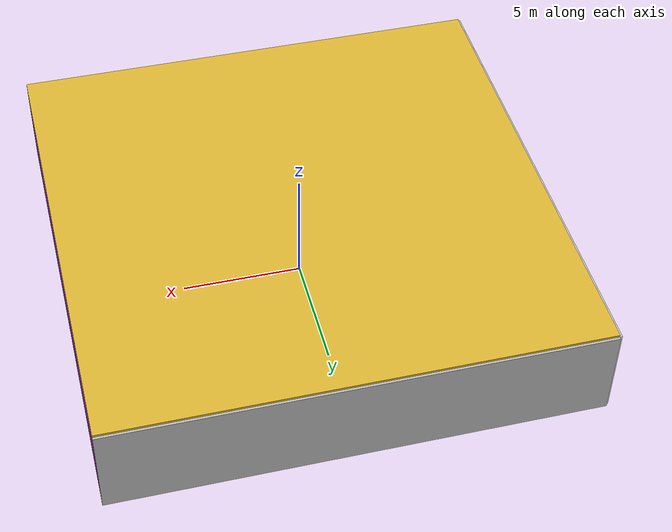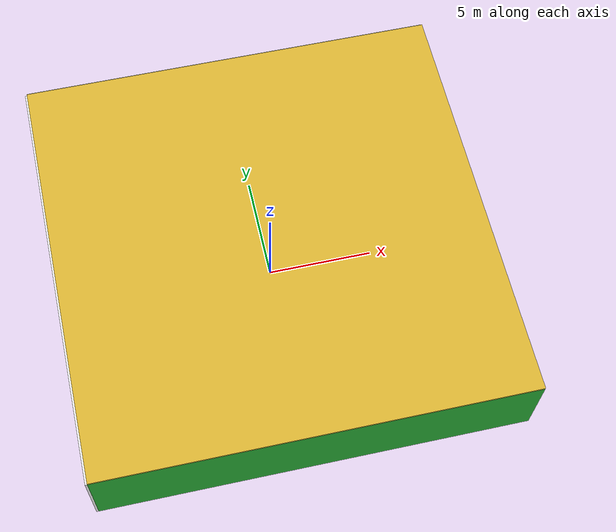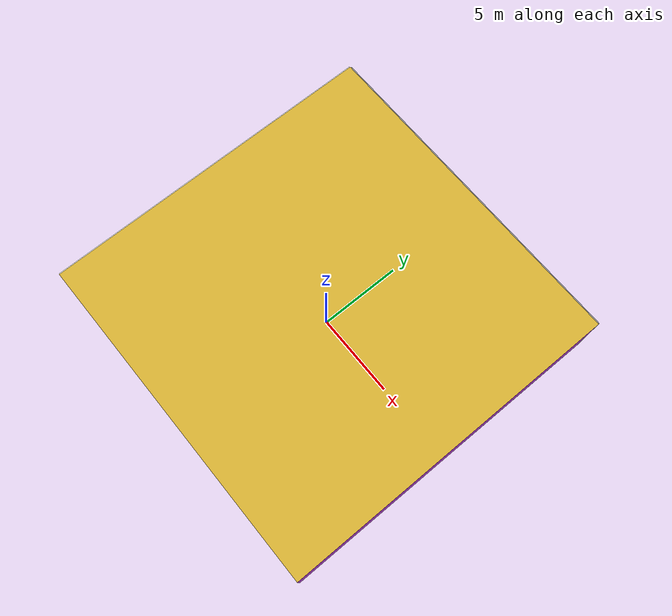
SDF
<sdf version="1.4">
 <world name="default">
  <physics type="ode">
   <max_step_size>0.001</max_step_size>
   <real_time_factor>1</real_time_factor>
   <real_time_update_rate>1000</real_time_update_rate>
   <gravity>0 0 -9.8</gravity>
  </physics>
  <scene><ambient>0.4 0.4 0.4 1</ambient><background>0.7 0.7 0.7 1</background><shadows>1</shadows></scene>
  <model name="Surrounding">
   <static>1</static>
   <link name="Ceiling">
    <collision name="Ceiling_Collision"><geometry><box><size>20 20 0.1</size></box></geometry></collision>
    <visual name="Ceiling_Visual">
     <geometry><box><size>20 20 0.1</size></box></geometry>
     <material>
      <script><uri>file://media/materials/scripts/gazebo.material</uri><name>Gazebo/Gold</name></script>
     </material>
    </visual>
    <pose>0 0 4.05 0 0 0</pose>
   </link>
   <link name="Wall_South">
    <collision name="Wall_South_Collision">
     <geometry><box><size>20 0 4</size></box></geometry>
     <pose>0 0 2 0 -0 0</pose>
    </collision>
    <visual name="Wall_South_Visual">
     <pose>0 0 2 0 -0 0</pose>
     <geometry><box><size>20 0 4</size></box></geometry>
     <material>
      <script><uri>file://media/materials/scripts/gazebo.material</uri><name>Gazebo/Green</name></script>
     </material>
    </visual>
    <velocity_decay><linear>0</linear><angular>0</angular></velocity_decay>
    <pose>0 -10 0 0 -0 0</pose>
   </link>
   <link name="Wall_East">
    <collision name="Wall_21_Collision">
     <geometry><box><size>20 0 4</size></box></geometry>
     <pose>0 0 2 0 -0 0</pose>
    </collision>
    <visual name="Wall_21_Visual">
     <pose>0 0 2 0 -0 0</pose>
     <geometry><box><size>20 0 4</size></box></geometry>
     <material>
      <script><uri>file://media/materials/scripts/gazebo.material</uri><name>Gazebo/Purple</name></script>
     </material>
    </visual>
    <velocity_decay><linear>0</linear><angular>0</angular></velocity_decay>
    <pose>10 0 0 0 -0 1.5708</pose>
   </link>
   <link name="Wall_North">
    <collision name="Wall_22_Collision">
     <geometry><box><size>20 0.2 4</size></box></geometry>
     <pose>0 0 2 0 -0 0</pose>
    </collision>
    <visual name="Wall_22_Visual">
     <pose>0 0 2 0 -0 0</pose>
     <geometry><box><size>20 0.2 4</size></box></geometry>
     <material>
      <script><uri>file://media/materials/scripts/gazebo.material</uri><name>Gazebo/LightOff</name></script>
     </material>
    </visual>
    <velocity_decay><linear>0</linear><angular>0</angular></velocity_decay>
    <pose>0 10 0 0 -0 0</pose>
   </link>
   <link name="Wall_West">
    <collision name="Wall_23_Collision">
     <geometry><box><size>20 0.2 4</size></box></geometry>
     <pose>0 0 2 0 -0 0</pose>
    </collision>
    <visual name="Wall_23_Visual">
     <pose>0 0 2 0 -0 0</pose>
     <geometry><box><size>20 0.2 4</size></box></geometry>
     <material>
      <script><uri>file://media/materials/scripts/gazebo.material</uri><name>Gazebo/White</name></script>
     </material>
    </visual>
    <velocity_decay><linear>0</linear><angular>0</angular></velocity_decay>
    <pose>-10 0 0 0 0 -1.5708</pose>
   </link>
   <link name="Ground_link">
    <collision name="collision">
     <pose>0 0 .05 0 -0 0</pose>
     <geometry><box><size>20 20 0.1</size></box></geometry>
    </collision>
    <visual name="visual">
     <pose>0 0 .05 0 -0 0</pose>
     <geometry><box><size>20 20 0.1</size></box></geometry>
     <material>
      <script><uri>file://media/materials/scripts/gazebo.material</uri><name>Gazebo/GreenTransparent</name></script>
     </material>
    </visual>
   </link>
   <static>1</static>
  </model>
  <spherical_coordinates>
   <surface_model>EARTH_WGS84</surface_model>
   <latitude_deg>0</latitude_deg>
   <longitude_deg>0</longitude_deg>
   <elevation>0</elevation>
   <heading_deg>0</heading_deg>
  </spherical_coordinates>
  <light name="lightball_0" type="diffuse">
   <diffuse>0.8 0.8 0.8 1</diffuse>
   <specular>0.2 0.2 0.2 1</specular>
   <attenuation>
    <range>100</range>
    <constant>0.7</constant>
    <linear>0.01</linear>
    <quadratic>0.001</quadratic>
   </attenuation>
   <direction>-0.5 0.1 -0.9</direction>
   <pose>5.72545321039 1.325331048 1.37562044076 0 0 0</pose>
  </light>
  <light name="lightball_1" type="diffuse">
   <diffuse>0.8 0.8 0.8 1</diffuse>
   <specular>0.2 0.2 0.2 1</specular>
   <attenuation>
    <range>100</range>
    <constant>0.7</constant>
    <linear>0.01</linear>
    <quadratic>0.001</quadratic>
   </attenuation>
   <direction>-0.5 0.1 -0.9</direction>
   <pose>-2.42143201056 -8.4520330873 1.6337681072 0 0 0</pose>
  </light>
  <light name="lightball_2" type="diffuse">
   <diffuse>0.8 0.8 0.8 1</diffuse>
   <specular>0.2 0.2 0.2 1</specular>
   <attenuation>
    <range>100</range>
    <constant>0.7</constant>
    <linear>0.01</linear>
    <quadratic>0.001</quadratic>
   </attenuation>
   <direction>-0.5 0.1 -0.9</direction>
   <pose>2.1919455565 7.31880597076 2.64682639565 0 0 0</pose>
  </light>
  <light name="lightball_3" type="diffuse">
   <diffuse>0.8 0.8 0.8 1</diffuse>
   <specular>0.2 0.2 0.2 1</specular>
   <attenuation>
    <range>100</range>
    <constant>0.7</constant>
    <linear>0.01</linear>
    <quadratic>0.001</quadratic>
   </attenuation>
   <direction>-0.5 0.1 -0.9</direction>
   <pose>-8.51850824428 5.17934041387 1.70352541071 0 0 0</pose>
  </light>
  <light name="lightball_4" type="diffuse">
   <diffuse>0.8 0.8 0.8 1</diffuse>
   <specular>0.2 0.2 0.2 1</specular>
   <attenuation>
    <range>100</range>
    <constant>0.7</constant>
    <linear>0.01</linear>
    <quadratic>0.001</quadratic>
   </attenuation>
   <direction>-0.5 0.1 -0.9</direction>
   <pose>4.48945193465 -8.37414113163 1.15422906448 0 0 0</pose>
  </light>
  <include><uri>model://table</uri><pose>-6.92080947357 4.77522478051 0 0 0 1.79568211368</pose></include>
  <include>
   <uri>model://textured_shapes</uri>
   <pose>-4.82136289343 -5.1206152337 0 0 0 2.25706739993</pose>
  </include>
  <include>
   <uri>model://textured_shapes</uri>
   <pose>-5.15090510346 5.04301713277 0 0 0 2.70820025926</pose>
  </include>
  <include>
   <uri>model://textured_shapes</uri>
   <pose>-0.739568775586 -7.24740467168 0 0 0 0.518983211267</pose>
  </include>
  <include><uri>model://table</uri><pose>-1.76313147267 3.75968508068 0 0 0 0.46081676245</pose></include>
  <include>
   <uri>model://textured_shapes</uri>
   <pose>0.815370909555 7.63495108938 0 0 0 2.39862783558</pose>
  </include>
 </world>
</sdf>

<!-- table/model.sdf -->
<sdf version="1.5">
  <model name="table">
    <static>true</static>
    <link name="link">
      <collision name="surface">
        <pose>0 0 1.0 0 0 0</pose>
        <geometry>
          <box>
            <size>1.5 0.8 0.03</size>
          </box>
        </geometry>
        <surface>
          <friction>
            <ode>
              <mu>0.6</mu>
              <mu2>0.6</mu2>
            </ode>
          </friction>
        </surface>
      </collision>
      <visual name="visual1">
        <pose>0 0 1.0 0 0 0</pose>
        <geometry>
          <box>
            <size>1.5 0.8 0.03</size>
          </box>
        </geometry>
        <material>
          <script>
            <uri>model://media/materials/scripts/gazebo.material</uri>
            <name>Gazebo/Wood</name>
          </script>
        </material>
      </visual>
      <collision name="front_left_leg">
        <pose>0.68 0.38 0.5 0 0 0</pose>
        <geometry>
          <cylinder>
            <radius>0.02</radius>
            <length>1.0</length>
          </cylinder>
        </geometry>
      </collision>
      <visual name="front_left_leg">
        <pose>0.68 0.38 0.5 0 0 0</pose>
        <geometry>
          <cylinder>
            <radius>0.02</radius>
            <length>1.0</length>
          </cylinder>
        </geometry>
        <material>
          <script>
            <uri>model://media/materials/scripts/gazebo.material</uri>
            <name>Gazebo/Grey</name>
          </script>
        </material>
      </visual>
      <collision name="front_right_leg">
        <pose>0.68 -0.38 0.5 0 0 0</pose>
        <geometry>
          <cylinder>
            <radius>0.02</radius>
            <length>1.0</length>
          </cylinder>
        </geometry>
      </collision>
      <visual name="front_right_leg">
        <pose>0.68 -0.38 0.5 0 0 0</pose>
        <geometry>
          <cylinder>
            <radius>0.02</radius>
            <length>1.0</length>
          </cylinder>
        </geometry>
        <material>
          <script>
            <uri>model://media/materials/scripts/gazebo.material</uri>
            <name>Gazebo/Grey</name>
          </script>
        </material>
      </visual>
      <collision name="back_right_leg">
        <pose>-0.68 -0.38 0.5 0 0 0</pose>
        <geometry>
          <cylinder>
            <radius>0.02</radius>
            <length>1.0</length>
          </cylinder>
        </geometry>
      </collision>
      <visual name="back_right_leg">
        <pose>-0.68 -0.38 0.5 0 0 0</pose>
        <geometry>
          <cylinder>
            <radius>0.02</radius>
            <length>1.0</length>
          </cylinder>
        </geometry>
        <material>
          <script>
            <uri>model://media/materials/scripts/gazebo.material</uri>
            <name>Gazebo/Grey</name>
          </script>
        </material>
      </visual>
      <collision name="back_left_leg">
        <pose>-0.68 0.38 0.5 0 0 0</pose>
        <geometry>
          <cylinder>
            <radius>0.02</radius>
            <length>1.0</length>
          </cylinder>
        </geometry>
      </collision>
      <visual name="back_left_leg">
        <pose>-0.68 0.38 0.5 0 0 0</pose>
        <geometry>
          <cylinder>
            <radius>0.02</radius>
            <length>1.0</length>
          </cylinder>
        </geometry>
        <material>
          <script>
            <uri>model://media/materials/scripts/gazebo.material</uri>
            <name>Gazebo/Grey</name>
          </script>
        </material>
      </visual>
    </link>
  </model>
</sdf>

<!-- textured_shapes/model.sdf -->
<sdf version="1.6">
  <model name="textured_shapes">
    <pose>0 0 0.5 0 0 0</pose>
    <link name="box">
      <pose>0 -1.5 0 0 0 0</pose>
      <collision name="collision">
        <geometry>
          <box>
            <size>1 1 1</size>
          </box>
        </geometry>
      </collision>
      <visual name="visual">
        <geometry>
          <box>
            <size>1 1 1</size>
          </box>
        </geometry>
        <material>
          <script>
            <uri>model://../model_source/models/textured_shapes/materials/scripts</uri>
            <uri>model://../model_source/models/textured_shapes/materials/textures</uri>
            <name>TexturedShape/Squares</name>
          </script>
        </material>
      </visual>
    </link>
    <link name="sphere">
      <collision name="collision">
        <geometry>
          <sphere>
            <radius>0.5</radius>
          </sphere>
        </geometry>
      </collision>
      <visual name="visual">
        <geometry>
          <sphere>
            <radius>0.5</radius>
          </sphere>
        </geometry>
        <material>
          <script>
            <uri>model://../model_source/models/textured_shapes/materials/scripts</uri>
            <uri>model://../model_source/models/textured_shapes/materials/textures</uri>
            <name>TexturedShape/Squares</name>
          </script>
        </material>
      </visual>
    </link>
    <link name="cylinder">
      <pose>0 1.5 0 0 0 0</pose>
      <collision name="collision">
        <geometry>
          <cylinder>
            <radius>0.5</radius>
            <length>1</length>
          </cylinder>
        </geometry>
      </collision>
      <visual name="visual">
        <geometry>
          <cylinder>
            <radius>0.5</radius>
            <length>1</length>
          </cylinder>
        </geometry>
        <material>
          <script>
            <uri>model://../model_source/models/textured_shapes/materials/scripts</uri>
            <uri>model://../model_source/models/textured_shapes/materials/textures</uri>
            <name>TexturedShape/Squares</name>
          </script>
        </material>
      </visual>
    </link>
  </model>
</sdf>
